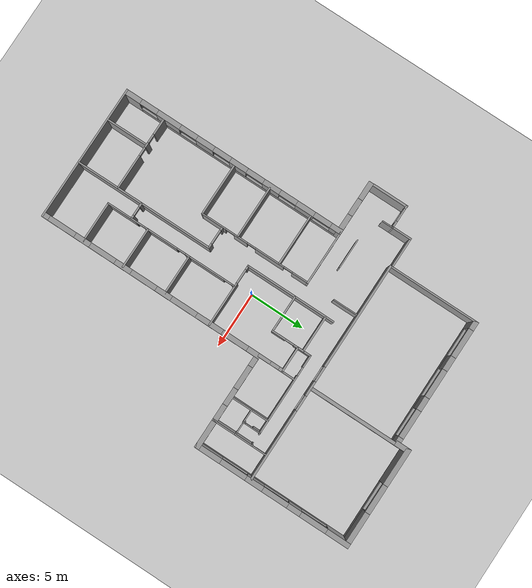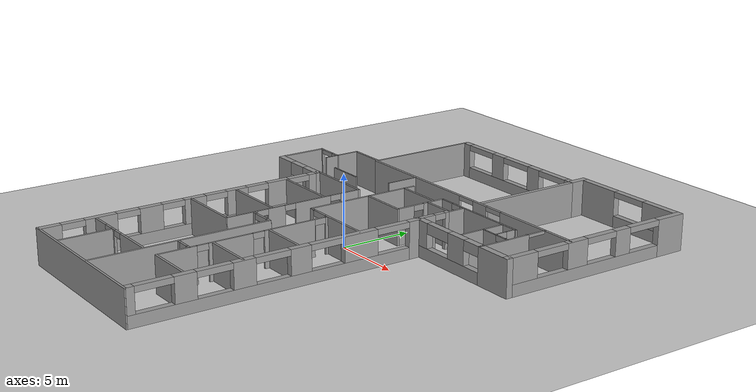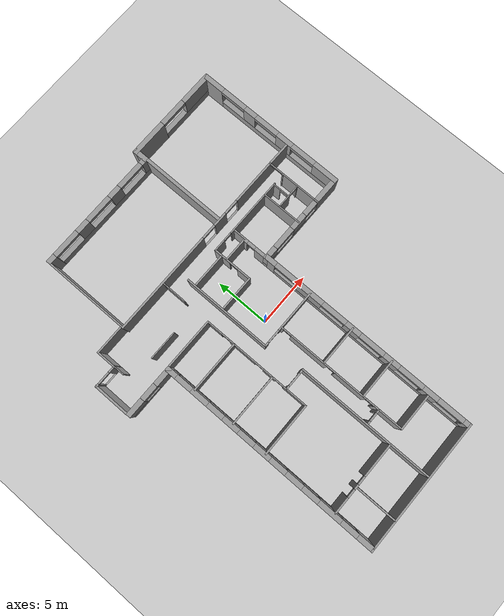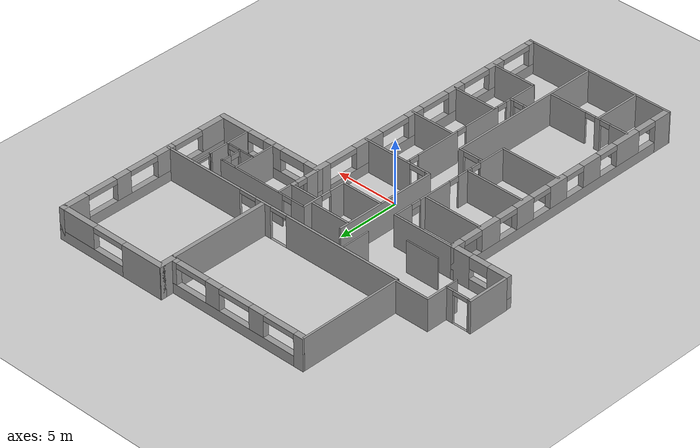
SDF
<?xml version="1.0" ?>
<sdf version="1.5">
  <world name="default">
    <!-- A global light source -->
    <include>
      <uri>model://sun</uri>
    </include>
    <!-- A ground plane -->
    <include>
      <uri>model://ground_plane</uri>
    </include>
    <!-- Centro Piaggio -->
    <include>
      <uri>model://CentroPiaggioReal</uri>
      <name>CentroPiaggio</name>
      <pose>0 0 0 0 0 0</pose>
    </include>
  </world>
</sdf>
